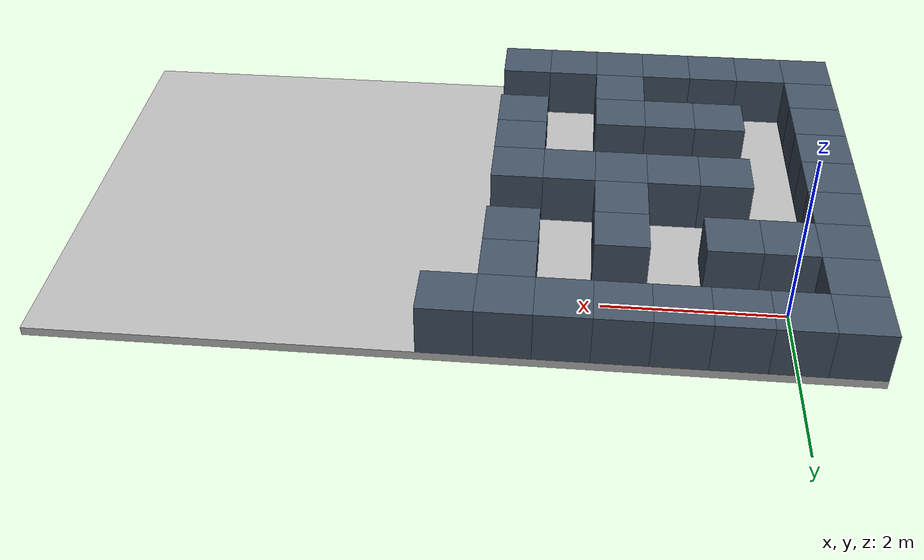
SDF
<sdf version="1.9">
 <world name="limo_maze">
  <model name="floor">
   <static>true</static>
   <pose>3.5999999999999996 -1.7999999999999998 -0.05 0 0 0</pose>
   <link name="body">
    <collision name="collision">
     <geometry><box><size>9.0 5.3999999999999995 0.1</size></box></geometry>
    </collision>
    <visual name="visual">
     <geometry><box><size>9.0 5.3999999999999995 0.1</size></box></geometry>
     <material><ambient>0.72 0.72 0.72 1</ambient><diffuse>0.72 0.72 0.72 1</diffuse></material>
    </visual>
   </link>
  </model>
  <model name="wall_0_0">
   <static>true</static>
   <pose>-0.6 0.6 0.3 0 0 0</pose>
   <link name="body">
    <collision name="collision"><geometry><box><size>0.6 0.6 0.6</size></box></geometry></collision>
    <visual name="visual">
     <geometry><box><size>0.6 0.6 0.6</size></box></geometry>
     <material><ambient>0.26 0.32 0.39 1</ambient><diffuse>0.26 0.32 0.39 1</diffuse></material>
    </visual>
   </link>
  </model>
  <model name="wall_1_0">
   <static>true</static>
   <pose>0.0 0.6 0.3 0 0 0</pose>
   <link name="body">
    <collision name="collision"><geometry><box><size>0.6 0.6 0.6</size></box></geometry></collision>
    <visual name="visual">
     <geometry><box><size>0.6 0.6 0.6</size></box></geometry>
     <material><ambient>0.26 0.32 0.39 1</ambient><diffuse>0.26 0.32 0.39 1</diffuse></material>
    </visual>
   </link>
  </model>
  <model name="wall_2_0">
   <static>true</static>
   <pose>0.6 0.6 0.3 0 0 0</pose>
   <link name="body">
    <collision name="collision"><geometry><box><size>0.6 0.6 0.6</size></box></geometry></collision>
    <visual name="visual">
     <geometry><box><size>0.6 0.6 0.6</size></box></geometry>
     <material><ambient>0.26 0.32 0.39 1</ambient><diffuse>0.26 0.32 0.39 1</diffuse></material>
    </visual>
   </link>
  </model>
  <model name="wall_3_0">
   <static>true</static>
   <pose>1.2 0.6 0.3 0 0 0</pose>
   <link name="body">
    <collision name="collision"><geometry><box><size>0.6 0.6 0.6</size></box></geometry></collision>
    <visual name="visual">
     <geometry><box><size>0.6 0.6 0.6</size></box></geometry>
     <material><ambient>0.26 0.32 0.39 1</ambient><diffuse>0.26 0.32 0.39 1</diffuse></material>
    </visual>
   </link>
  </model>
  <model name="wall_4_0">
   <static>true</static>
   <pose>1.7999999999999998 0.6 0.3 0 0 0</pose>
   <link name="body">
    <collision name="collision"><geometry><box><size>0.6 0.6 0.6</size></box></geometry></collision>
    <visual name="visual">
     <geometry><box><size>0.6 0.6 0.6</size></box></geometry>
     <material><ambient>0.26 0.32 0.39 1</ambient><diffuse>0.26 0.32 0.39 1</diffuse></material>
    </visual>
   </link>
  </model>
  <model name="wall_5_0">
   <static>true</static>
   <pose>2.4 0.6 0.3 0 0 0</pose>
   <link name="body">
    <collision name="collision"><geometry><box><size>0.6 0.6 0.6</size></box></geometry></collision>
    <visual name="visual">
     <geometry><box><size>0.6 0.6 0.6</size></box></geometry>
     <material><ambient>0.26 0.32 0.39 1</ambient><diffuse>0.26 0.32 0.39 1</diffuse></material>
    </visual>
   </link>
  </model>
  <model name="wall_6_0">
   <static>true</static>
   <pose>3.0 0.6 0.3 0 0 0</pose>
   <link name="body">
    <collision name="collision"><geometry><box><size>0.6 0.6 0.6</size></box></geometry></collision>
    <visual name="visual">
     <geometry><box><size>0.6 0.6 0.6</size></box></geometry>
     <material><ambient>0.26 0.32 0.39 1</ambient><diffuse>0.26 0.32 0.39 1</diffuse></material>
    </visual>
   </link>
  </model>
  <model name="wall_7_0">
   <static>true</static>
   <pose>3.5999999999999996 0.6 0.3 0 0 0</pose>
   <link name="body">
    <collision name="collision"><geometry><box><size>0.6 0.6 0.6</size></box></geometry></collision>
    <visual name="visual">
     <geometry><box><size>0.6 0.6 0.6</size></box></geometry>
     <material><ambient>0.26 0.32 0.39 1</ambient><diffuse>0.26 0.32 0.39 1</diffuse></material>
    </visual>
   </link>
  </model>
  <model name="wall_0_1">
   <static>true</static>
   <pose>-0.6 0.0 0.3 0 0 0</pose>
   <link name="body">
    <collision name="collision"><geometry><box><size>0.6 0.6 0.6</size></box></geometry></collision>
    <visual name="visual">
     <geometry><box><size>0.6 0.6 0.6</size></box></geometry>
     <material><ambient>0.26 0.32 0.39 1</ambient><diffuse>0.26 0.32 0.39 1</diffuse></material>
    </visual>
   </link>
  </model>
  <model name="wall_6_1">
   <static>true</static>
   <pose>3.0 0.0 0.3 0 0 0</pose>
   <link name="body">
    <collision name="collision"><geometry><box><size>0.6 0.6 0.6</size></box></geometry></collision>
    <visual name="visual">
     <geometry><box><size>0.6 0.6 0.6</size></box></geometry>
     <material><ambient>0.26 0.32 0.39 1</ambient><diffuse>0.26 0.32 0.39 1</diffuse></material>
    </visual>
   </link>
  </model>
  <model name="wall_0_2">
   <static>true</static>
   <pose>-0.6 -0.6 0.3 0 0 0</pose>
   <link name="body">
    <collision name="collision"><geometry><box><size>0.6 0.6 0.6</size></box></geometry></collision>
    <visual name="visual">
     <geometry><box><size>0.6 0.6 0.6</size></box></geometry>
     <material><ambient>0.26 0.32 0.39 1</ambient><diffuse>0.26 0.32 0.39 1</diffuse></material>
    </visual>
   </link>
  </model>
  <model name="wall_1_2">
   <static>true</static>
   <pose>0.0 -0.6 0.3 0 0 0</pose>
   <link name="body">
    <collision name="collision"><geometry><box><size>0.6 0.6 0.6</size></box></geometry></collision>
    <visual name="visual">
     <geometry><box><size>0.6 0.6 0.6</size></box></geometry>
     <material><ambient>0.26 0.32 0.39 1</ambient><diffuse>0.26 0.32 0.39 1</diffuse></material>
    </visual>
   </link>
  </model>
  <model name="wall_2_2">
   <static>true</static>
   <pose>0.6 -0.6 0.3 0 0 0</pose>
   <link name="body">
    <collision name="collision"><geometry><box><size>0.6 0.6 0.6</size></box></geometry></collision>
    <visual name="visual">
     <geometry><box><size>0.6 0.6 0.6</size></box></geometry>
     <material><ambient>0.26 0.32 0.39 1</ambient><diffuse>0.26 0.32 0.39 1</diffuse></material>
    </visual>
   </link>
  </model>
  <model name="wall_4_2">
   <static>true</static>
   <pose>1.7999999999999998 -0.6 0.3 0 0 0</pose>
   <link name="body">
    <collision name="collision"><geometry><box><size>0.6 0.6 0.6</size></box></geometry></collision>
    <visual name="visual">
     <geometry><box><size>0.6 0.6 0.6</size></box></geometry>
     <material><ambient>0.26 0.32 0.39 1</ambient><diffuse>0.26 0.32 0.39 1</diffuse></material>
    </visual>
   </link>
  </model>
  <model name="wall_6_2">
   <static>true</static>
   <pose>3.0 -0.6 0.3 0 0 0</pose>
   <link name="body">
    <collision name="collision"><geometry><box><size>0.6 0.6 0.6</size></box></geometry></collision>
    <visual name="visual">
     <geometry><box><size>0.6 0.6 0.6</size></box></geometry>
     <material><ambient>0.26 0.32 0.39 1</ambient><diffuse>0.26 0.32 0.39 1</diffuse></material>
    </visual>
   </link>
  </model>
  <model name="wall_0_3">
   <static>true</static>
   <pose>-0.6 -1.2 0.3 0 0 0</pose>
   <link name="body">
    <collision name="collision"><geometry><box><size>0.6 0.6 0.6</size></box></geometry></collision>
    <visual name="visual">
     <geometry><box><size>0.6 0.6 0.6</size></box></geometry>
     <material><ambient>0.26 0.32 0.39 1</ambient><diffuse>0.26 0.32 0.39 1</diffuse></material>
    </visual>
   </link>
  </model>
  <model name="wall_4_3">
   <static>true</static>
   <pose>1.7999999999999998 -1.2 0.3 0 0 0</pose>
   <link name="body">
    <collision name="collision"><geometry><box><size>0.6 0.6 0.6</size></box></geometry></collision>
    <visual name="visual">
     <geometry><box><size>0.6 0.6 0.6</size></box></geometry>
     <material><ambient>0.26 0.32 0.39 1</ambient><diffuse>0.26 0.32 0.39 1</diffuse></material>
    </visual>
   </link>
  </model>
  <model name="wall_0_4">
   <static>true</static>
   <pose>-0.6 -1.7999999999999998 0.3 0 0 0</pose>
   <link name="body">
    <collision name="collision"><geometry><box><size>0.6 0.6 0.6</size></box></geometry></collision>
    <visual name="visual">
     <geometry><box><size>0.6 0.6 0.6</size></box></geometry>
     <material><ambient>0.26 0.32 0.39 1</ambient><diffuse>0.26 0.32 0.39 1</diffuse></material>
    </visual>
   </link>
  </model>
  <model name="wall_2_4">
   <static>true</static>
   <pose>0.6 -1.7999999999999998 0.3 0 0 0</pose>
   <link name="body">
    <collision name="collision"><geometry><box><size>0.6 0.6 0.6</size></box></geometry></collision>
    <visual name="visual">
     <geometry><box><size>0.6 0.6 0.6</size></box></geometry>
     <material><ambient>0.26 0.32 0.39 1</ambient><diffuse>0.26 0.32 0.39 1</diffuse></material>
    </visual>
   </link>
  </model>
  <model name="wall_3_4">
   <static>true</static>
   <pose>1.2 -1.7999999999999998 0.3 0 0 0</pose>
   <link name="body">
    <collision name="collision"><geometry><box><size>0.6 0.6 0.6</size></box></geometry></collision>
    <visual name="visual">
     <geometry><box><size>0.6 0.6 0.6</size></box></geometry>
     <material><ambient>0.26 0.32 0.39 1</ambient><diffuse>0.26 0.32 0.39 1</diffuse></material>
    </visual>
   </link>
  </model>
  <model name="wall_4_4">
   <static>true</static>
   <pose>1.7999999999999998 -1.7999999999999998 0.3 0 0 0</pose>
   <link name="body">
    <collision name="collision"><geometry><box><size>0.6 0.6 0.6</size></box></geometry></collision>
    <visual name="visual">
     <geometry><box><size>0.6 0.6 0.6</size></box></geometry>
     <material><ambient>0.26 0.32 0.39 1</ambient><diffuse>0.26 0.32 0.39 1</diffuse></material>
    </visual>
   </link>
  </model>
  <model name="wall_5_4">
   <static>true</static>
   <pose>2.4 -1.7999999999999998 0.3 0 0 0</pose>
   <link name="body">
    <collision name="collision"><geometry><box><size>0.6 0.6 0.6</size></box></geometry></collision>
    <visual name="visual">
     <geometry><box><size>0.6 0.6 0.6</size></box></geometry>
     <material><ambient>0.26 0.32 0.39 1</ambient><diffuse>0.26 0.32 0.39 1</diffuse></material>
    </visual>
   </link>
  </model>
  <model name="wall_6_4">
   <static>true</static>
   <pose>3.0 -1.7999999999999998 0.3 0 0 0</pose>
   <link name="body">
    <collision name="collision"><geometry><box><size>0.6 0.6 0.6</size></box></geometry></collision>
    <visual name="visual">
     <geometry><box><size>0.6 0.6 0.6</size></box></geometry>
     <material><ambient>0.26 0.32 0.39 1</ambient><diffuse>0.26 0.32 0.39 1</diffuse></material>
    </visual>
   </link>
  </model>
  <model name="wall_0_5">
   <static>true</static>
   <pose>-0.6 -2.4 0.3 0 0 0</pose>
   <link name="body">
    <collision name="collision"><geometry><box><size>0.6 0.6 0.6</size></box></geometry></collision>
    <visual name="visual">
     <geometry><box><size>0.6 0.6 0.6</size></box></geometry>
     <material><ambient>0.26 0.32 0.39 1</ambient><diffuse>0.26 0.32 0.39 1</diffuse></material>
    </visual>
   </link>
  </model>
  <model name="wall_6_5">
   <static>true</static>
   <pose>3.0 -2.4 0.3 0 0 0</pose>
   <link name="body">
    <collision name="collision"><geometry><box><size>0.6 0.6 0.6</size></box></geometry></collision>
    <visual name="visual">
     <geometry><box><size>0.6 0.6 0.6</size></box></geometry>
     <material><ambient>0.26 0.32 0.39 1</ambient><diffuse>0.26 0.32 0.39 1</diffuse></material>
    </visual>
   </link>
  </model>
  <model name="wall_0_6">
   <static>true</static>
   <pose>-0.6 -3.0 0.3 0 0 0</pose>
   <link name="body">
    <collision name="collision"><geometry><box><size>0.6 0.6 0.6</size></box></geometry></collision>
    <visual name="visual">
     <geometry><box><size>0.6 0.6 0.6</size></box></geometry>
     <material><ambient>0.26 0.32 0.39 1</ambient><diffuse>0.26 0.32 0.39 1</diffuse></material>
    </visual>
   </link>
  </model>
  <model name="wall_2_6">
   <static>true</static>
   <pose>0.6 -3.0 0.3 0 0 0</pose>
   <link name="body">
    <collision name="collision"><geometry><box><size>0.6 0.6 0.6</size></box></geometry></collision>
    <visual name="visual">
     <geometry><box><size>0.6 0.6 0.6</size></box></geometry>
     <material><ambient>0.26 0.32 0.39 1</ambient><diffuse>0.26 0.32 0.39 1</diffuse></material>
    </visual>
   </link>
  </model>
  <model name="wall_3_6">
   <static>true</static>
   <pose>1.2 -3.0 0.3 0 0 0</pose>
   <link name="body">
    <collision name="collision"><geometry><box><size>0.6 0.6 0.6</size></box></geometry></collision>
    <visual name="visual">
     <geometry><box><size>0.6 0.6 0.6</size></box></geometry>
     <material><ambient>0.26 0.32 0.39 1</ambient><diffuse>0.26 0.32 0.39 1</diffuse></material>
    </visual>
   </link>
  </model>
  <model name="wall_4_6">
   <static>true</static>
   <pose>1.7999999999999998 -3.0 0.3 0 0 0</pose>
   <link name="body">
    <collision name="collision"><geometry><box><size>0.6 0.6 0.6</size></box></geometry></collision>
    <visual name="visual">
     <geometry><box><size>0.6 0.6 0.6</size></box></geometry>
     <material><ambient>0.26 0.32 0.39 1</ambient><diffuse>0.26 0.32 0.39 1</diffuse></material>
    </visual>
   </link>
  </model>
  <model name="wall_6_6">
   <static>true</static>
   <pose>3.0 -3.0 0.3 0 0 0</pose>
   <link name="body">
    <collision name="collision"><geometry><box><size>0.6 0.6 0.6</size></box></geometry></collision>
    <visual name="visual">
     <geometry><box><size>0.6 0.6 0.6</size></box></geometry>
     <material><ambient>0.26 0.32 0.39 1</ambient><diffuse>0.26 0.32 0.39 1</diffuse></material>
    </visual>
   </link>
  </model>
  <model name="wall_0_7">
   <static>true</static>
   <pose>-0.6 -3.5999999999999996 0.3 0 0 0</pose>
   <link name="body">
    <collision name="collision"><geometry><box><size>0.6 0.6 0.6</size></box></geometry></collision>
    <visual name="visual">
     <geometry><box><size>0.6 0.6 0.6</size></box></geometry>
     <material><ambient>0.26 0.32 0.39 1</ambient><diffuse>0.26 0.32 0.39 1</diffuse></material>
    </visual>
   </link>
  </model>
  <model name="wall_4_7">
   <static>true</static>
   <pose>1.7999999999999998 -3.5999999999999996 0.3 0 0 0</pose>
   <link name="body">
    <collision name="collision"><geometry><box><size>0.6 0.6 0.6</size></box></geometry></collision>
    <visual name="visual">
     <geometry><box><size>0.6 0.6 0.6</size></box></geometry>
     <material><ambient>0.26 0.32 0.39 1</ambient><diffuse>0.26 0.32 0.39 1</diffuse></material>
    </visual>
   </link>
  </model>
  <model name="wall_0_8">
   <static>true</static>
   <pose>-0.6 -4.2 0.3 0 0 0</pose>
   <link name="body">
    <collision name="collision"><geometry><box><size>0.6 0.6 0.6</size></box></geometry></collision>
    <visual name="visual">
     <geometry><box><size>0.6 0.6 0.6</size></box></geometry>
     <material><ambient>0.26 0.32 0.39 1</ambient><diffuse>0.26 0.32 0.39 1</diffuse></material>
    </visual>
   </link>
  </model>
  <model name="wall_1_8">
   <static>true</static>
   <pose>0.0 -4.2 0.3 0 0 0</pose>
   <link name="body">
    <collision name="collision"><geometry><box><size>0.6 0.6 0.6</size></box></geometry></collision>
    <visual name="visual">
     <geometry><box><size>0.6 0.6 0.6</size></box></geometry>
     <material><ambient>0.26 0.32 0.39 1</ambient><diffuse>0.26 0.32 0.39 1</diffuse></material>
    </visual>
   </link>
  </model>
  <model name="wall_2_8">
   <static>true</static>
   <pose>0.6 -4.2 0.3 0 0 0</pose>
   <link name="body">
    <collision name="collision"><geometry><box><size>0.6 0.6 0.6</size></box></geometry></collision>
    <visual name="visual">
     <geometry><box><size>0.6 0.6 0.6</size></box></geometry>
     <material><ambient>0.26 0.32 0.39 1</ambient><diffuse>0.26 0.32 0.39 1</diffuse></material>
    </visual>
   </link>
  </model>
  <model name="wall_3_8">
   <static>true</static>
   <pose>1.2 -4.2 0.3 0 0 0</pose>
   <link name="body">
    <collision name="collision"><geometry><box><size>0.6 0.6 0.6</size></box></geometry></collision>
    <visual name="visual">
     <geometry><box><size>0.6 0.6 0.6</size></box></geometry>
     <material><ambient>0.26 0.32 0.39 1</ambient><diffuse>0.26 0.32 0.39 1</diffuse></material>
    </visual>
   </link>
  </model>
  <model name="wall_4_8">
   <static>true</static>
   <pose>1.7999999999999998 -4.2 0.3 0 0 0</pose>
   <link name="body">
    <collision name="collision"><geometry><box><size>0.6 0.6 0.6</size></box></geometry></collision>
    <visual name="visual">
     <geometry><box><size>0.6 0.6 0.6</size></box></geometry>
     <material><ambient>0.26 0.32 0.39 1</ambient><diffuse>0.26 0.32 0.39 1</diffuse></material>
    </visual>
   </link>
  </model>
  <model name="wall_5_8">
   <static>true</static>
   <pose>2.4 -4.2 0.3 0 0 0</pose>
   <link name="body">
    <collision name="collision"><geometry><box><size>0.6 0.6 0.6</size></box></geometry></collision>
    <visual name="visual">
     <geometry><box><size>0.6 0.6 0.6</size></box></geometry>
     <material><ambient>0.26 0.32 0.39 1</ambient><diffuse>0.26 0.32 0.39 1</diffuse></material>
    </visual>
   </link>
  </model>
  <model name="wall_6_8">
   <static>true</static>
   <pose>3.0 -4.2 0.3 0 0 0</pose>
   <link name="body">
    <collision name="collision"><geometry><box><size>0.6 0.6 0.6</size></box></geometry></collision>
    <visual name="visual">
     <geometry><box><size>0.6 0.6 0.6</size></box></geometry>
     <material><ambient>0.26 0.32 0.39 1</ambient><diffuse>0.26 0.32 0.39 1</diffuse></material>
    </visual>
   </link>
  </model>
  <model name="target_surrogate_0">
   <static>true</static>
   <pose>2.4 0.285 0.1 0 0 0</pose>
   <link name="body">
    <collision name="collision"><geometry><box><size>0.06 0.03 0.2</size></box></geometry></collision>
    <visual name="visual">
     <geometry><box><size>0.06 0.03 0.2</size></box></geometry>
     <material><ambient>0.9 0.05 0.05 1</ambient><diffuse>0.9 0.05 0.05 1</diffuse></material>
    </visual>
   </link>
  </model>
 </world>
</sdf>
